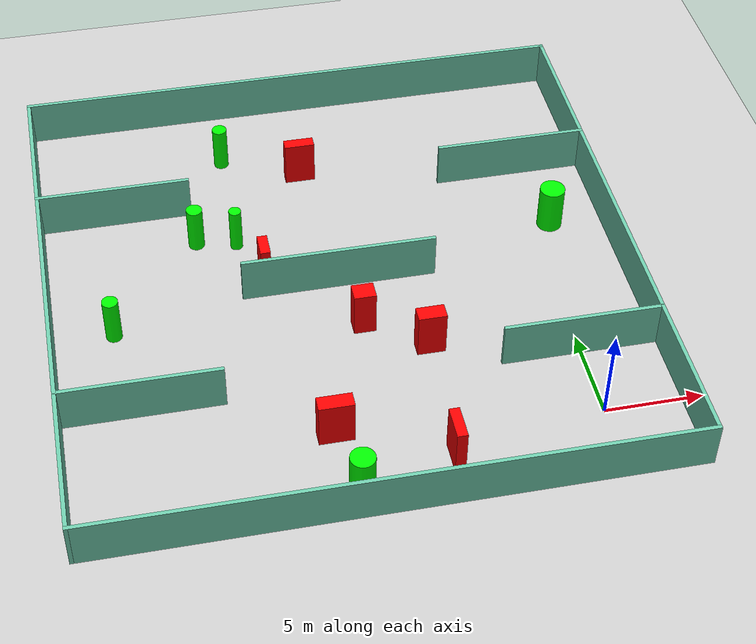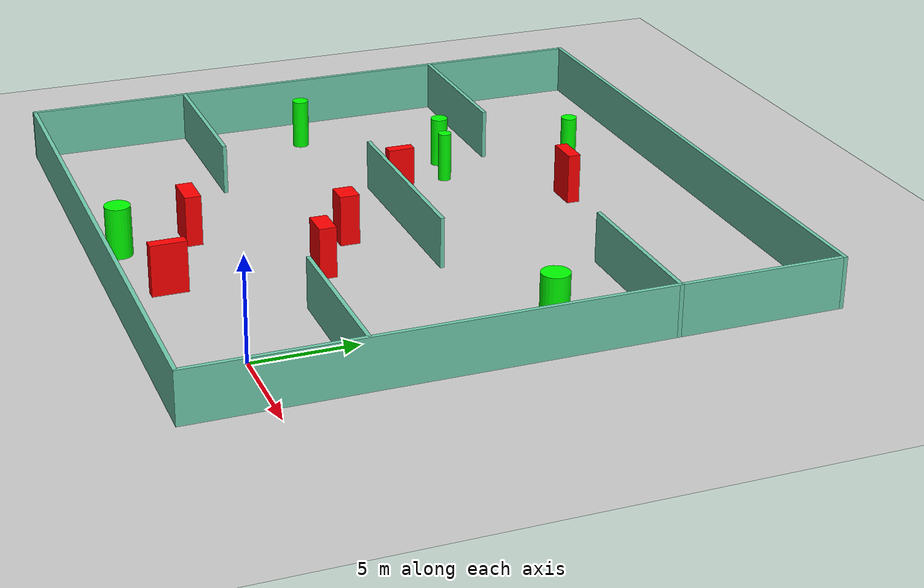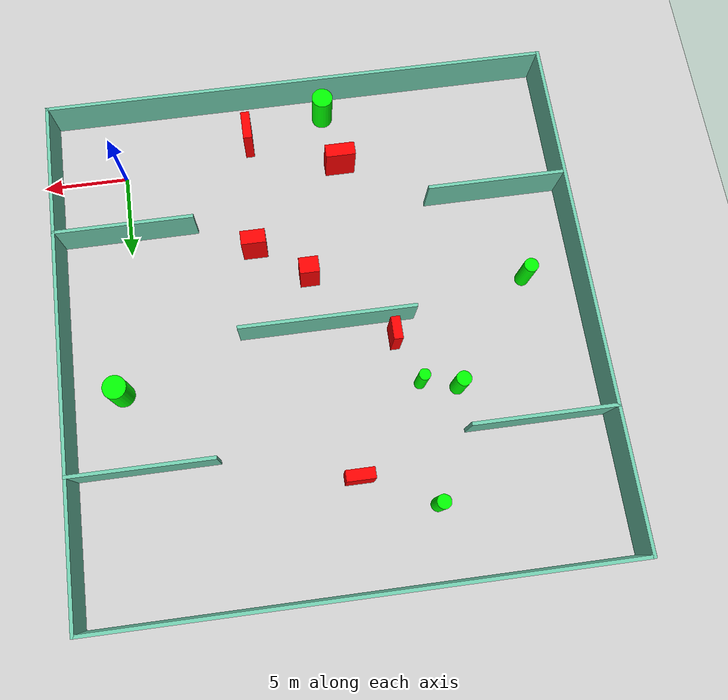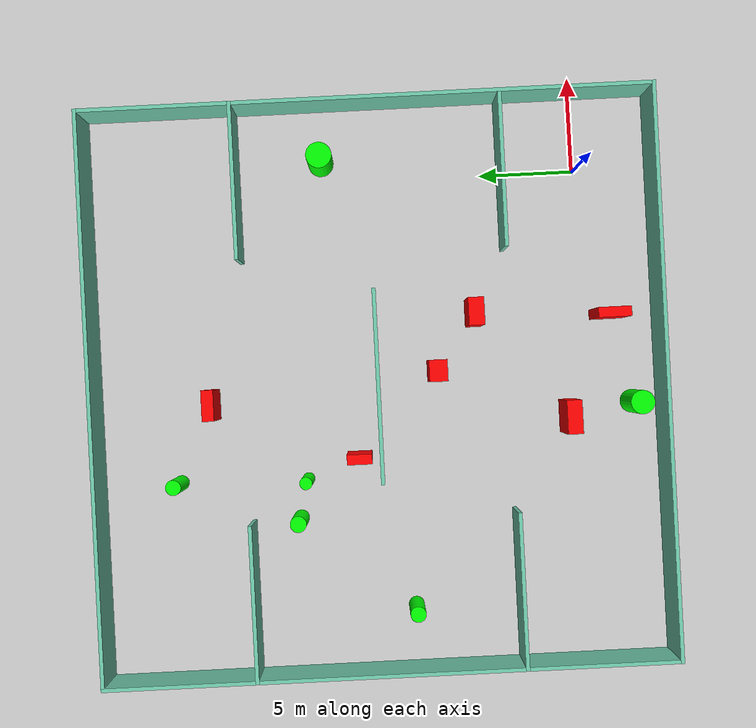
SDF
<sdf version="1.7">
 <world name="default">
  <light name="sun" type="directional">
   <pose>0 0 10 0 -0 0</pose>
   <diffuse>0.8 0.8 0.8 1</diffuse>
   <specular>0.2 0.2 0.2 1</specular>
   <attenuation>
    <range>1000</range>
    <constant>0.9</constant>
    <linear>0.01</linear>
    <quadratic>0.001</quadratic>
   </attenuation>
   <direction>-0.5 0.1 -0.9</direction>
   <spot><inner_angle>0</inner_angle><outer_angle>0</outer_angle><falloff>0</falloff></spot>
  </light>
  <model name="ground_plane">
   <static>1</static>
   <link name="link">
    <collision name="collision">
     <geometry><plane><normal>0 0 1</normal><size>100 100</size></plane></geometry>
     <surface>
      <contact><collide_bitmask>65535</collide_bitmask></contact>
      <friction><ode><mu>100</mu><mu2>50</mu2></ode></friction>
     </surface>
    </collision>
    <visual name="visual">
     <cast_shadows>0</cast_shadows>
     <geometry><plane><normal>0 0 1</normal><size>100 100</size></plane></geometry>
     <material>
      <script><uri>file://media/materials/scripts/gazebo.material</uri><name>Gazebo/Grey</name></script>
     </material>
    </visual>
   </link>
  </model>
  <gravity>0 0 -9.8</gravity>
  <magnetic_field>6e-06 2.3e-05 -4.2e-05</magnetic_field>
  <atmosphere type="adiabatic"/>
  <physics type="ode">
   <max_step_size>0.001</max_step_size>
   <real_time_factor>1</real_time_factor>
   <real_time_update_rate>1000</real_time_update_rate>
  </physics>
  <scene><ambient>0.4 0.4 0.4 1</ambient><background>0.7 0.7 0.7 1</background><shadows>1</shadows></scene>
  <spherical_coordinates>
   <surface_model>EARTH_WGS84</surface_model>
   <latitude_deg>0</latitude_deg>
   <longitude_deg>0</longitude_deg>
   <elevation>0</elevation>
   <heading_deg>0</heading_deg>
  </spherical_coordinates>
  <model name="my_base_walls">
   <link name="Wall_10">
    <collision name="Wall_10_Collision">
     <geometry><box><size>8.2 0.2 2.5</size></box></geometry>
     <pose>0 0 1.25 0 -0 0</pose>
    </collision>
    <visual name="Wall_10_Visual">
     <pose>0 0 1.25 0 -0 0</pose>
     <geometry><box><size>8.2 0.2 2.5</size></box></geometry>
     <material>
      <script><uri>file://media/materials/scripts/gazebo.material</uri><name>Gazebo/Grey</name></script>
      <ambient>0.435294 0.796078 0.67451 1</ambient>
     </material>
     <meta><layer>0</layer></meta>
    </visual>
    <pose>-11 -7 0 0 -0 0</pose>
   </link>
   <link name="Wall_12">
    <collision name="Wall_12_Collision">
     <geometry><box><size>8.2 0.2 2.5</size></box></geometry>
     <pose>0 0 1.25 0 -0 0</pose>
    </collision>
    <visual name="Wall_12_Visual">
     <pose>0 0 1.25 0 -0 0</pose>
     <geometry><box><size>8.2 0.2 2.5</size></box></geometry>
     <material>
      <script><uri>file://media/materials/scripts/gazebo.material</uri><name>Gazebo/Grey</name></script>
      <ambient>0.435294 0.796078 0.67451 1</ambient>
     </material>
     <meta><layer>0</layer></meta>
    </visual>
    <pose>-11 7 0 0 -0 0</pose>
   </link>
   <link name="Wall_14">
    <collision name="Wall_14_Collision">
     <geometry><box><size>8.2 0.2 2.5</size></box></geometry>
     <pose>0 0 1.25 0 -0 0</pose>
    </collision>
    <visual name="Wall_14_Visual">
     <pose>0 0 1.25 0 -0 0</pose>
     <geometry><box><size>8.2 0.2 2.5</size></box></geometry>
     <material>
      <script><uri>file://media/materials/scripts/gazebo.material</uri><name>Gazebo/Grey</name></script>
      <ambient>0.435294 0.796078 0.67451 1</ambient>
     </material>
     <meta><layer>0</layer></meta>
    </visual>
    <pose>11 7 0 0 -0 3.14159</pose>
   </link>
   <link name="Wall_16">
    <collision name="Wall_16_Collision">
     <geometry><box><size>10.2 0.2 2.5</size></box></geometry>
     <pose>0 0 1.25 0 -0 0</pose>
    </collision>
    <visual name="Wall_16_Visual">
     <pose>0 0 1.25 0 -0 0</pose>
     <geometry><box><size>10.2 0.2 2.5</size></box></geometry>
     <material>
      <script><uri>file://media/materials/scripts/gazebo.material</uri><name>Gazebo/Grey</name></script>
      <ambient>0.435294 0.796078 0.67451 1</ambient>
     </material>
     <meta><layer>0</layer></meta>
    </visual>
    <pose>0 0 0 0 -0 3.14159</pose>
   </link>
   <link name="Wall_2">
    <collision name="Wall_2_Collision">
     <geometry><box><size>30.2 0.2 2.5</size></box></geometry>
     <pose>0 0 1.25 0 -0 0</pose>
    </collision>
    <visual name="Wall_2_Visual">
     <pose>0 0 1.25 0 -0 0</pose>
     <geometry><box><size>30.2 0.2 2.5</size></box></geometry>
     <material>
      <script><uri>file://media/materials/scripts/gazebo.material</uri><name>Gazebo/Grey</name></script>
      <ambient>0.435294 0.796078 0.67451 1</ambient>
     </material>
     <meta><layer>0</layer></meta>
    </visual>
    <pose>0 -15 0 0 -0 3.14159</pose>
   </link>
   <link name="Wall_3">
    <collision name="Wall_3_Collision">
     <geometry><box><size>30.2 0.2 2.5</size></box></geometry>
     <pose>0 0 1.25 0 -0 0</pose>
    </collision>
    <visual name="Wall_3_Visual">
     <pose>0 0 1.25 0 -0 0</pose>
     <geometry><box><size>30.2 0.2 2.5</size></box></geometry>
     <material>
      <script><uri>file://media/materials/scripts/gazebo.material</uri><name>Gazebo/Grey</name></script>
      <ambient>0.435294 0.796078 0.67451 1</ambient>
     </material>
     <meta><layer>0</layer></meta>
    </visual>
    <pose>-15 0 0 0 -0 1.5708</pose>
   </link>
   <link name="Wall_4">
    <collision name="Wall_4_Collision">
     <geometry><box><size>30.2 0.2 2.5</size></box></geometry>
     <pose>0 0 1.25 0 -0 0</pose>
    </collision>
    <visual name="Wall_4_Visual">
     <pose>0 0 1.25 0 -0 0</pose>
     <geometry><box><size>30.2 0.2 2.5</size></box></geometry>
     <material>
      <script><uri>file://media/materials/scripts/gazebo.material</uri><name>Gazebo/Grey</name></script>
      <ambient>0.435294 0.796078 0.67451 1</ambient>
     </material>
     <meta><layer>0</layer></meta>
    </visual>
    <pose>0 15 0 0 -0 0</pose>
   </link>
   <link name="Wall_6">
    <collision name="Wall_6_Collision">
     <geometry><box><size>30.2 0.2 2.5</size></box></geometry>
     <pose>0 0 1.25 0 -0 0</pose>
    </collision>
    <visual name="Wall_6_Visual">
     <pose>0 0 1.25 0 -0 0</pose>
     <geometry><box><size>30.2 0.2 2.5</size></box></geometry>
     <material>
      <script><uri>file://media/materials/scripts/gazebo.material</uri><name>Gazebo/Grey</name></script>
      <ambient>0.435294 0.796078 0.67451 1</ambient>
     </material>
     <meta><layer>0</layer></meta>
    </visual>
    <pose>15 0 0 0 -0 1.5708</pose>
   </link>
   <link name="Wall_8">
    <collision name="Wall_8_Collision">
     <geometry><box><size>8.2 0.2 2.5</size></box></geometry>
     <pose>0 0 1.25 0 -0 0</pose>
    </collision>
    <visual name="Wall_8_Visual">
     <pose>0 0 1.25 0 -0 0</pose>
     <geometry><box><size>8.2 0.2 2.5</size></box></geometry>
     <material>
      <script><uri>file://media/materials/scripts/gazebo.material</uri><name>Gazebo/Grey</name></script>
      <ambient>0.435294 0.796078 0.67451 1</ambient>
     </material>
     <meta><layer>0</layer></meta>
    </visual>
    <pose>11 -7 0 0 -0 3.14159</pose>
   </link>
   <static>1</static>
   <pose>-11 11 0 0 -0 0</pose>
  </model>
  <model name="cylinder1">
   <static>1</static>
   <link name="link">
    <inertial>
     <mass>1</mass>
     <inertia><ixx>0.5</ixx><ixy>0</ixy><ixz>0</ixz><iyy>0.5</iyy><iyz>0</iyz><izz>1</izz></inertia>
    </inertial>
    <collision name="collision">
     <geometry><cylinder><radius>0.4275780131739597</radius><length>2.5</length></cylinder></geometry>
    </collision>
    <visual name="visual">
     <geometry><cylinder><radius>0.4275780131739597</radius><length>2.5</length></cylinder></geometry>
     <material>
      <ambient>0 1 0 1</ambient>
      <diffuse>0 1 0 1</diffuse>
      <specular>0.1 0.1 0.1 1</specular>
      <emissive>0 0 0 0</emissive>
     </material>
    </visual>
   </link>
   <pose>-17.927631146882106 15.481189605633464 1.25 0 0 0</pose>
  </model>
  <model name="cylinder2">
   <static>1</static>
   <link name="link">
    <inertial>
     <mass>1</mass>
     <inertia><ixx>0.5</ixx><ixy>0</ixy><ixz>0</ixz><iyy>0.5</iyy><iyz>0</iyz><izz>1</izz></inertia>
    </inertial>
    <collision name="collision">
     <geometry><cylinder><radius>0.4130348913313399</radius><length>2.5</length></cylinder></geometry>
    </collision>
    <visual name="visual">
     <geometry><cylinder><radius>0.4130348913313399</radius><length>2.5</length></cylinder></geometry>
     <material>
      <ambient>0 1 0 1</ambient>
      <diffuse>0 1 0 1</diffuse>
      <specular>0.1 0.1 0.1 1</specular>
      <emissive>0 0 0 0</emissive>
     </material>
    </visual>
   </link>
   <pose>-22.886024711663108 9.508456954298618 1.25 0 0 0</pose>
  </model>
  <model name="cylinder3">
   <static>1</static>
   <link name="link">
    <inertial>
     <mass>1</mass>
     <inertia><ixx>0.5</ixx><ixy>0</ixy><ixz>0</ixz><iyy>0.5</iyy><iyz>0</iyz><izz>1</izz></inertia>
    </inertial>
    <collision name="collision">
     <geometry><cylinder><radius>0.6717513127115093</radius><length>2.5</length></cylinder></geometry>
    </collision>
    <visual name="visual">
     <geometry><cylinder><radius>0.6717513127115093</radius><length>2.5</length></cylinder></geometry>
     <material>
      <ambient>0 1 0 1</ambient>
      <diffuse>0 1 0 1</diffuse>
      <specular>0.1 0.1 0.1 1</specular>
      <emissive>0 0 0 0</emissive>
     </material>
    </visual>
   </link>
   <pose>1.0895250607261282 13.494779568773534 1.25 0 0 0</pose>
  </model>
  <model name="cylinder4">
   <static>1</static>
   <link name="link">
    <inertial>
     <mass>1</mass>
     <inertia><ixx>0.5</ixx><ixy>0</ixy><ixz>0</ixz><iyy>0.5</iyy><iyz>0</iyz><izz>1</izz></inertia>
    </inertial>
    <collision name="collision">
     <geometry><cylinder><radius>0.398361768657465</radius><length>2.5</length></cylinder></geometry>
    </collision>
    <visual name="visual">
     <geometry><cylinder><radius>0.398361768657465</radius><length>2.5</length></cylinder></geometry>
     <material>
      <ambient>0 1 0 1</ambient>
      <diffuse>0 1 0 1</diffuse>
      <specular>0.1 0.1 0.1 1</specular>
      <emissive>0 0 0 0</emissive>
     </material>
    </visual>
   </link>
   <pose>-15.722176661137231 21.847270834804252 1.25 0 0 0</pose>
  </model>
  <model name="cylinder5">
   <static>1</static>
   <link name="link">
    <inertial>
     <mass>1</mass>
     <inertia><ixx>0.5</ixx><ixy>0</ixy><ixz>0</ixz><iyy>0.5</iyy><iyz>0</iyz><izz>1</izz></inertia>
    </inertial>
    <collision name="collision">
     <geometry><cylinder><radius>0.3303553291680033</radius><length>2.5</length></cylinder></geometry>
    </collision>
    <visual name="visual">
     <geometry><cylinder><radius>0.3303553291680033</radius><length>2.5</length></cylinder></geometry>
     <material>
      <ambient>0 1 0 1</ambient>
      <diffuse>0 1 0 1</diffuse>
      <specular>0.1 0.1 0.1 1</specular>
      <emissive>0 0 0 0</emissive>
     </material>
    </visual>
   </link>
   <pose>-15.836275943654886 14.983001931690726 1.25 0 0 0</pose>
  </model>
  <model name="cylinder6">
   <static>1</static>
   <link name="link">
    <inertial>
     <mass>1</mass>
     <inertia><ixx>0.5</ixx><ixy>0</ixy><ixz>0</ixz><iyy>0.5</iyy><iyz>0</iyz><izz>1</izz></inertia>
    </inertial>
    <collision name="collision">
     <geometry><cylinder><radius>0.6222169327842877</radius><length>2.5</length></cylinder></geometry>
    </collision>
    <visual name="visual">
     <geometry><cylinder><radius>0.6222169327842877</radius><length>2.5</length></cylinder></geometry>
     <material>
      <ambient>0 1 0 1</ambient>
      <diffuse>0 1 0 1</diffuse>
      <specular>0.1 0.1 0.1 1</specular>
      <emissive>0 0 0 0</emissive>
     </material>
    </visual>
   </link>
   <pose>-12.502360162061143 -2.623024606819223 1.25 0 0 0</pose>
  </model>
  <model name="box1">
   <static>1</static>
   <link name="link">
    <inertial>
     <mass>1</mass>
     <inertia><ixx>0.083</ixx><ixy>0</ixy><ixz>0</ixz><iyy>0.083</iyy><iyz>0</iyz><izz>0.083</izz></inertia>
    </inertial>
    <collision name="collision">
     <geometry><box><size>0.5311956064994672 1.3095792533346589 2.5</size></box></geometry>
    </collision>
    <visual name="visual">
     <geometry><box><size>0.5311956064994672 1.3095792533346589 2.5</size></box></geometry>
     <material>
      <ambient>1 0 0 1</ambient>
      <diffuse>1 0 0 1</diffuse>
      <specular>0.1 0.1 0.1 1</specular>
      <emissive>0 0 0 0</emissive>
     </material>
    </visual>
    <sensor name="my_contact" type="contact">
     <contact><collision>box_collision</collision><topic>__default_topic__</topic></contact>
    </sensor>
   </link>
   <pose>-14.737118251063903 12.153517528876428 1.25 0 0 0</pose>
  </model>
  <model name="box2">
   <static>1</static>
   <link name="link">
    <inertial>
     <mass>1</mass>
     <inertia><ixx>0.083</ixx><ixy>0</ixy><ixz>0</ixz><iyy>0.083</iyy><iyz>0</iyz><izz>0.083</izz></inertia>
    </inertial>
    <collision name="collision">
     <geometry><box><size>1.6249290251053599 0.6285272656601507 2.5</size></box></geometry>
    </collision>
    <visual name="visual">
     <geometry><box><size>1.6249290251053599 0.6285272656601507 2.5</size></box></geometry>
     <material>
      <ambient>1 0 0 1</ambient>
      <diffuse>1 0 0 1</diffuse>
      <specular>0.1 0.1 0.1 1</specular>
      <emissive>0 0 0 0</emissive>
     </material>
    </visual>
    <sensor name="my_contact" type="contact">
     <contact><collision>box_collision</collision><topic>__default_topic__</topic></contact>
    </sensor>
   </link>
   <pose>-11.577241852211593 19.87500670110404 1.25 0 0 0</pose>
  </model>
  <model name="box3">
   <static>1</static>
   <link name="link">
    <inertial>
     <mass>1</mass>
     <inertia><ixx>0.083</ixx><ixy>0</ixy><ixz>0</ixz><iyy>0.083</iyy><iyz>0</iyz><izz>0.083</izz></inertia>
    </inertial>
    <collision name="collision">
     <geometry><box><size>1.766414894191123 0.7944199724406171 2.5</size></box></geometry>
    </collision>
    <visual name="visual">
     <geometry><box><size>1.766414894191123 0.7944199724406171 2.5</size></box></geometry>
     <material>
      <ambient>1 0 0 1</ambient>
      <diffuse>1 0 0 1</diffuse>
      <specular>0.1 0.1 0.1 1</specular>
      <emissive>0 0 0 0</emissive>
     </material>
    </visual>
    <sensor name="my_contact" type="contact">
     <contact><collision>box_collision</collision><topic>__default_topic__</topic></contact>
    </sensor>
   </link>
   <pose>-13.10255713900074 0.9127353144607473 1.25 0 0 0</pose>
  </model>
  <model name="box4">
   <static>1</static>
   <link name="link">
    <inertial>
     <mass>1</mass>
     <inertia><ixx>0.083</ixx><ixy>0</ixy><ixz>0</ixz><iyy>0.083</iyy><iyz>0</iyz><izz>0.083</izz></inertia>
    </inertial>
    <collision name="collision">
     <geometry><box><size>1.1384115231058178 0.9582450928881895 2.5</size></box></geometry>
    </collision>
    <visual name="visual">
     <geometry><box><size>1.1384115231058178 0.9582450928881895 2.5</size></box></geometry>
     <material>
      <ambient>1 0 0 1</ambient>
      <diffuse>1 0 0 1</diffuse>
      <specular>0.1 0.1 0.1 1</specular>
      <emissive>0 0 0 0</emissive>
     </material>
    </visual>
    <sensor name="my_contact" type="contact">
     <contact><collision>box_collision</collision><topic>__default_topic__</topic></contact>
    </sensor>
   </link>
   <pose>-10.351287183074255 7.8463945359692815 1.25 0 0 0</pose>
  </model>
  <model name="box5">
   <static>1</static>
   <link name="link">
    <inertial>
     <mass>1</mass>
     <inertia><ixx>0.083</ixx><ixy>0</ixy><ixz>0</ixz><iyy>0.083</iyy><iyz>0</iyz><izz>0.083</izz></inertia>
    </inertial>
    <collision name="collision">
     <geometry><box><size>0.5275359019800788 1.7254034599208556 2.5</size></box></geometry>
    </collision>
    <visual name="visual">
     <geometry><box><size>0.5275359019800788 1.7254034599208556 2.5</size></box></geometry>
     <material>
      <ambient>1 0 0 1</ambient>
      <diffuse>1 0 0 1</diffuse>
      <specular>0.1 0.1 0.1 1</specular>
      <emissive>0 0 0 0</emissive>
     </material>
    </visual>
    <sensor name="my_contact" type="contact">
     <contact><collision>box_collision</collision><topic>__default_topic__</topic></contact>
    </sensor>
   </link>
   <pose>-7.7558713382915645 -1.4216676211343815 1.25 0 0 0</pose>
  </model>
  <model name="box6">
   <static>1</static>
   <link name="link">
    <inertial>
     <mass>1</mass>
     <inertia><ixx>0.083</ixx><ixy>0</ixy><ixz>0</ixz><iyy>0.083</iyy><iyz>0</iyz><izz>0.083</izz></inertia>
    </inertial>
    <collision name="collision">
     <geometry><box><size>1.4509326886266938 0.8291771395608845 2.5</size></box></geometry>
    </collision>
    <visual name="visual">
     <geometry><box><size>1.4509326886266938 0.8291771395608845 2.5</size></box></geometry>
     <material>
      <ambient>1 0 0 1</ambient>
      <diffuse>1 0 0 1</diffuse>
      <specular>0.1 0.1 0.1 1</specular>
      <emissive>0 0 0 0</emissive>
     </material>
    </visual>
    <sensor name="my_contact" type="contact">
     <contact><collision>box_collision</collision><topic>__default_topic__</topic></contact>
    </sensor>
   </link>
   <pose>-7.366911509299566 5.73466851888298 1.25 0 0 0</pose>
  </model>
 </world>
</sdf>
